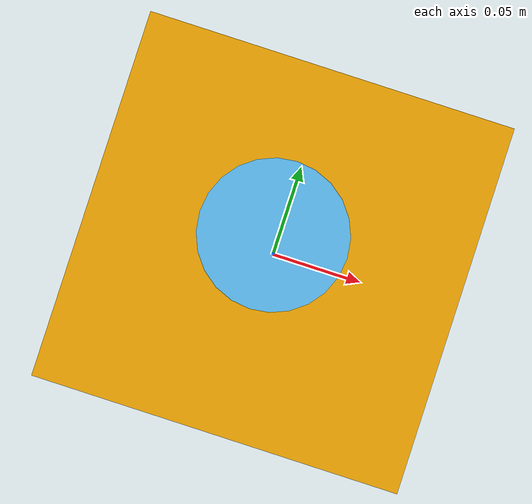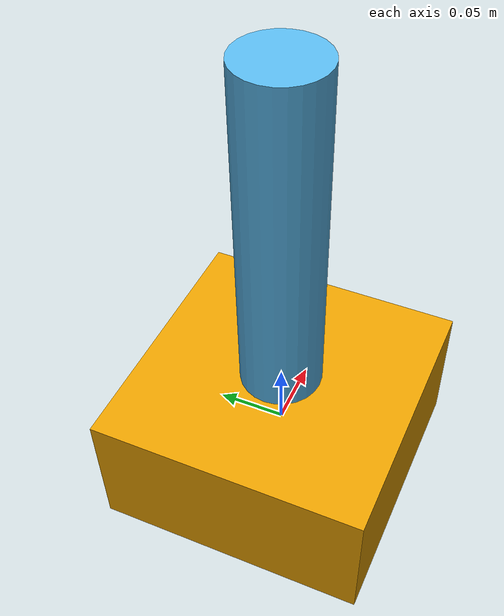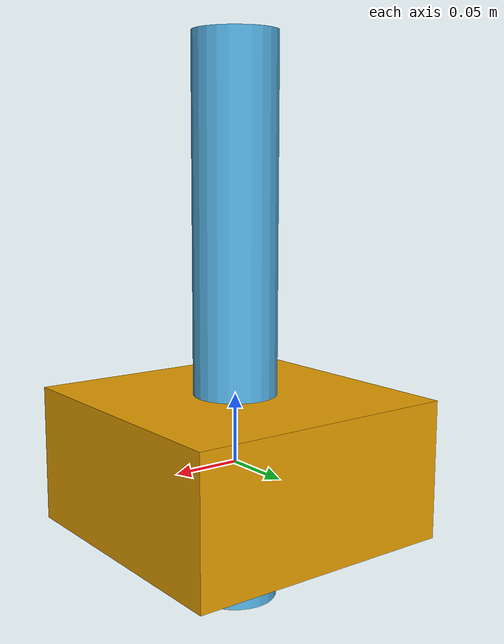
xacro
<?xml version="1.0"?>
<!-- Self-contained xacro fixture for the CLI tests. Uses a property, a macro, and an arg, but no
     $(find ...) so it expands with just the xacro tool, no ROS package resolution. -->
<robot xmlns:xacro="http://www.ros.org/wiki/xacro" name="xacro_arm">

  <xacro:arg name="upper_radius" default="0.03"/>
  <xacro:property name="seg_len" value="0.4"/>

  <xacro:macro name="cyl_link" params="name radius">
    <link name="${name}">
      <inertial>
        <mass value="0.5"/>
        <inertia ixx="0.01" ixy="0" ixz="0" iyy="0.01" iyz="0" izz="0.002"/>
      </inertial>
      <visual>
        <geometry><cylinder radius="${radius}" length="${seg_len}"/></geometry>
      </visual>
    </link>
  </xacro:macro>

  <link name="base">
    <inertial>
      <mass value="2.0"/>
      <inertia ixx="0.02" ixy="0" ixz="0" iyy="0.02" iyz="0" izz="0.03"/>
    </inertial>
    <visual>
      <geometry><box size="0.2 0.2 0.1"/></geometry>
    </visual>
  </link>

  <xacro:cyl_link name="upper_arm" radius="$(arg upper_radius)"/>

  <joint name="shoulder" type="revolute">
    <parent link="base"/>
    <child link="upper_arm"/>
    <origin xyz="0 0 0.1" rpy="0 0 0"/>
    <axis xyz="0 1 0"/>
    <limit lower="-1.57" upper="1.57" effort="40" velocity="2.0"/>
  </joint>
</robot>
